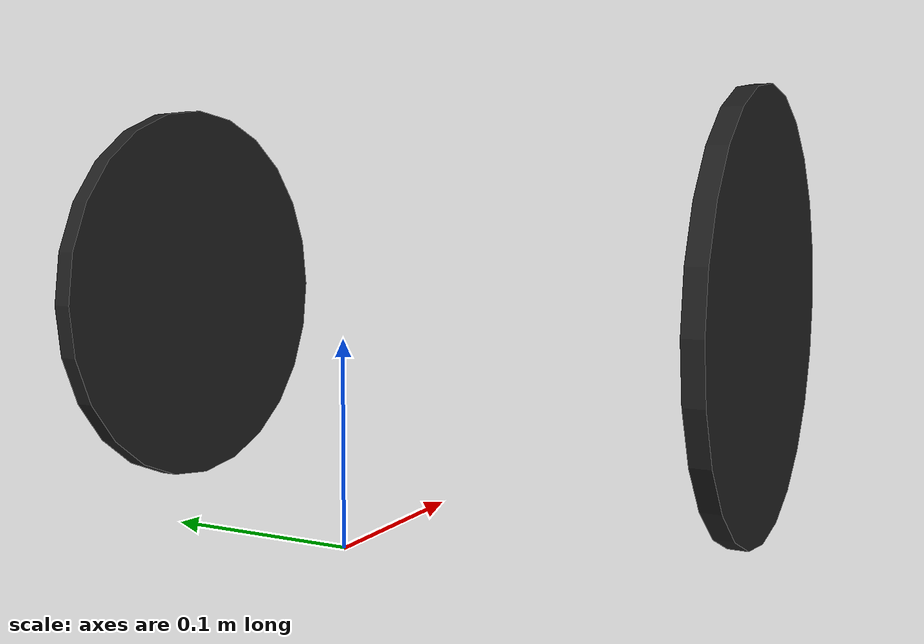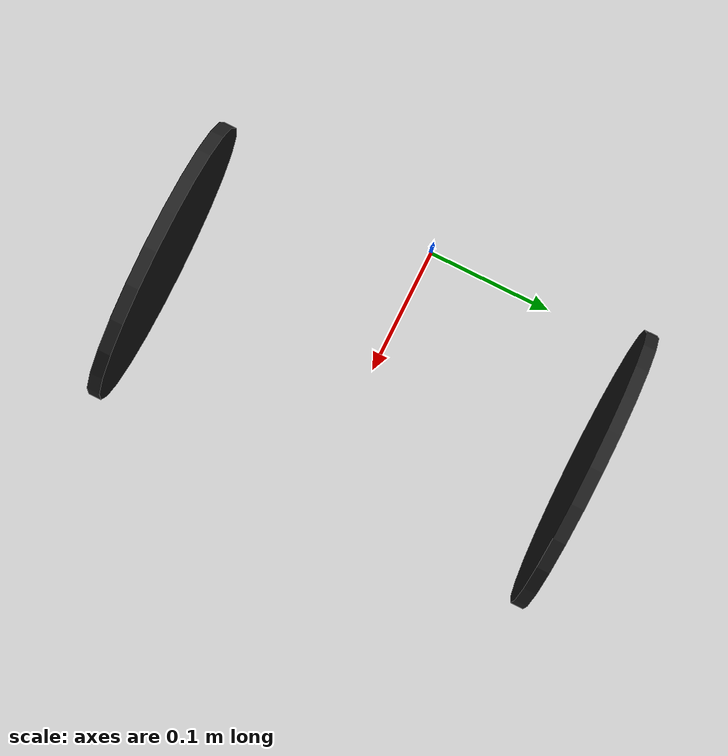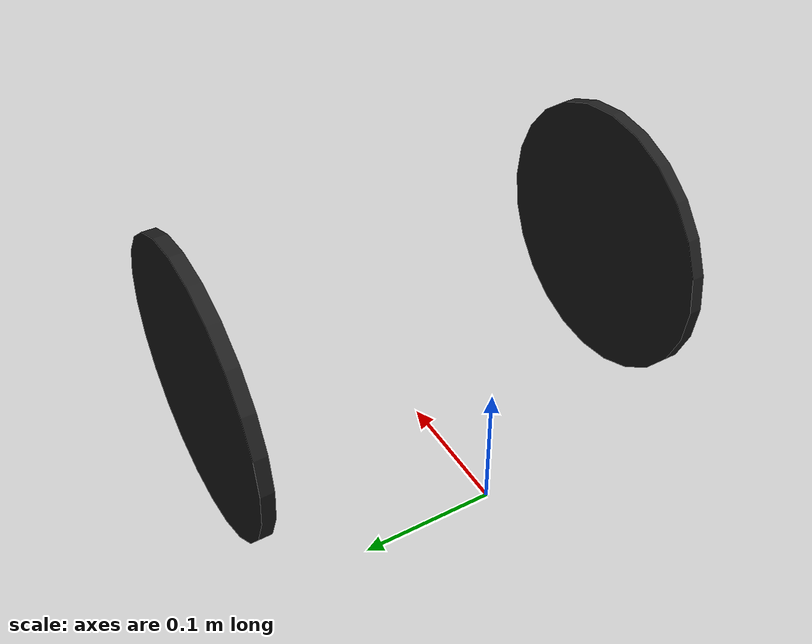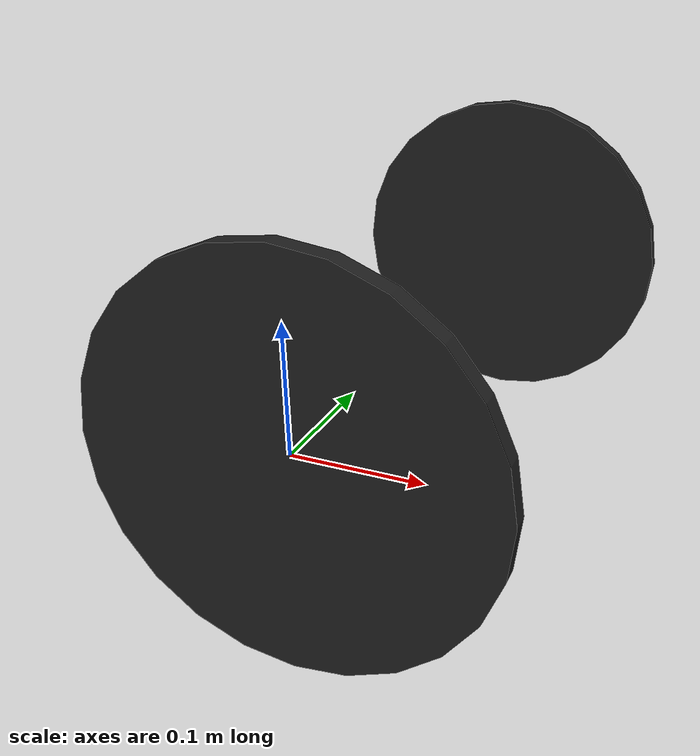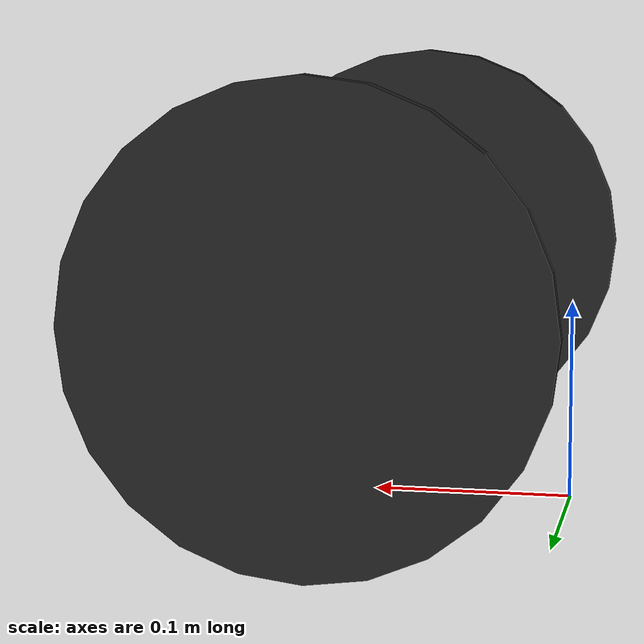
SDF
<?xml version="1.0" ?>
<sdf version="1.5">
  <model name="mrobot">
    <link name="chassis">
      <pose>0 0 0.16 0 0 0</pose>
      <inertial>
        <mass>5.67</mass>
        <inertia>
          <ixx>0.07</ixx>
          <iyy>0.08</iyy>
          <izz>0.10</izz>
          <ixy>0</ixy>
          <ixz>0</ixz>
          <iyz>0</iyz>
        </inertia>
      </inertial>
      <collision name="collision">
        <geometry>
          <box>
            <size>0.445 0.277 0.17</size>
          </box>
        </geometry>
      </collision>
      <collision name="castor_collision">
        <pose>-.2 0 -.12 0 0 0</pose>
        <geometry>
          <sphere>
            <radius>0.04</radius>
          </sphere>
        </geometry>
      </collision>
    </link>
    <link name="right_wheel">
      <pose>0.1 -.17 0.11 0 1.57079632679490 1.57079632679490</pose>
      <inertial>
        <mass>1.5</mass>
        <inertia>
          <ixx>0.0051</ixx>
          <iyy>0.0051</iyy>
          <izz>0.0090</izz>
          <ixy>0</ixy>
          <ixz>0</ixz>
          <iyz>0</iyz>
        </inertia>
      </inertial>
      <collision name="collision">
        <geometry>
          <cylinder>
            <radius>0.11</radius>
            <length>0.0000001</length>
          </cylinder>
        </geometry>
        <surface>
          <friction>
            <ode>
              <mu>100000.0</mu>
              <mu2>100000.0</mu2>
              <slip1>0.0</slip1>
              <slip2>0.0</slip2>
            </ode>
          </friction>
        </surface>
      </collision>
      <visual name="visual">
        <geometry>
          <cylinder>
            <radius>0.11</radius>
            <length>0.01</length>
          </cylinder>
        </geometry>
        <material>
          <script>
            <uri>file://media/materials/scripts/gazebo.material</uri>
            <name>Gazebo/FlatBlack</name>
          </script>
        </material>
      </visual>
    </link>
    <link name="left_wheel">
      <pose>0.1 .17 0.11 0 1.57079632679490 1.57079632679490</pose>
      <inertial>
        <mass>1.5</mass>
        <inertia>
          <ixx>0.0051</ixx>
          <iyy>0.0051</iyy>
          <izz>0.0090</izz>
          <ixy>0</ixy>
          <ixz>0</ixz>
          <iyz>0</iyz>
        </inertia>
      </inertial>
      <collision name="collision">
        <geometry>
          <cylinder>
            <radius>0.11</radius>
            <length>0.0000001</length>
          </cylinder>
        </geometry>
        <surface>
          <friction>
            <ode>
              <mu>100000.0</mu>
              <mu2>100000.0</mu2>
              <slip1>0.0</slip1>
              <slip2>0.0</slip2>
            </ode>
          </friction>
        </surface>
      </collision>
      <visual name="visual">
        <geometry>
          <cylinder>
            <radius>0.11</radius>
            <length>0.01</length>
          </cylinder>
        </geometry>
        <material>
          <script>
            <uri>file://media/materials/scripts/gazebo.material</uri>
            <name>Gazebo/FlatBlack</name>
          </script>
        </material>
      </visual>
    </link>
    <joint type="revolute" name="left_wheel_hinge">
      <pose>0 0 -0.03 0 0 0</pose>
      <child>left_wheel</child>
      <parent>chassis</parent>
      <axis>
        <xyz>0 1 0</xyz>
        <use_parent_model_frame>true</use_parent_model_frame>
      </axis>
    </joint>
    <joint type="revolute" name="right_wheel_hinge">
      <pose>0 0 0.03 0 0 0</pose>
      <child>right_wheel</child>
      <parent>chassis</parent>
      <axis>
        <xyz>0 1 0</xyz>
        <use_parent_model_frame>true</use_parent_model_frame>
      </axis>
    </joint>
  </model>
</sdf>
